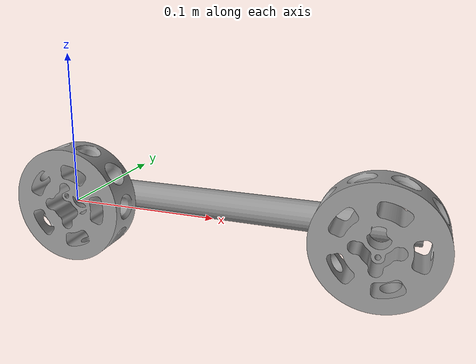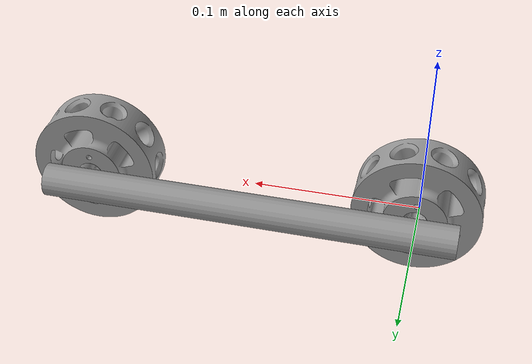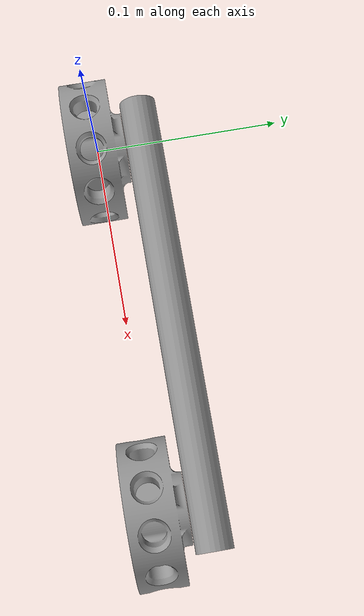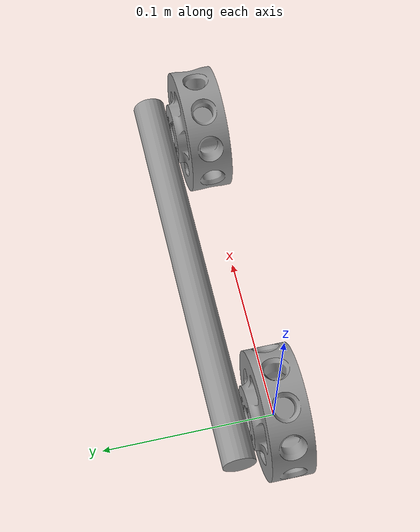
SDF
<?xml version='1.0'?>
<sdf version='1.5'>
  <model name='two_drum'>
    <link name='wheel_0'>
      <pose frame=''>0 0 0 1.57 0 0</pose>
      <gravity>1</gravity>
      <self_collide>1</self_collide>
      <kinematic>0</kinematic>
      <inertial>
        <mass>1</mass>
        <inertia>
          <ixx>1</ixx>
          <ixy>0</ixy>
          <ixz>0</ixz>
          <iyy>1</iyy>
          <iyz>0</iyz>
          <izz>1</izz>
        </inertia>
      </inertial>
      <visual name='visual'>
        <pose frame=''>-0.0375 -0.0375 -0.034 0 -0 0</pose>
        <geometry>
          <mesh>
            <uri>model://track_drum/meshes/drum.STL</uri>
            <scale>0.001 0.001 0.001</scale>
          </mesh>
        </geometry>
        <material>
          <lighting>1</lighting>
          <script>
            <uri>file://media/materials/scripts/gazebo.material</uri>
            <name>Gazebo/Grey</name>
          </script>
          <ambient>0.3 0.3 0.3 1</ambient>
          <diffuse>0.7 0.7 0.7 1</diffuse>
          <specular>0.01 0.01 0.01 1</specular>
          <emissive>0 0 0 1</emissive>
          <shader type='vertex'>
            <normal_map>__default__</normal_map>
          </shader>
        </material>
        <cast_shadows>1</cast_shadows>
        <transparency>0</transparency>
      </visual>
      <collision name='collision'>
        <laser_retro>0</laser_retro>
        <max_contacts>20</max_contacts>
        <pose frame=''>-0.0375 -0.0375 -0.034 0 -0 0</pose>
        <geometry>
          <mesh>
            <uri>model://track_drum/meshes/drum.STL</uri>
            <scale>0.001 0.001 0.001</scale>
          </mesh>
        </geometry>
        <surface>
          <friction>
            <ode>
              <mu>1</mu>
              <mu2>1</mu2>
              <fdir1>0 0 0</fdir1>
              <slip1>0</slip1>
              <slip2>0</slip2>
            </ode>
          </friction>
          <bounce>
            <restitution_coefficient>0</restitution_coefficient>
            <threshold>1</threshold>
          </bounce>
          <contact>
            <collide_without_contact>0</collide_without_contact>
            <collide_without_contact_bitmask>1</collide_without_contact_bitmask>
            <collide_bitmask>1</collide_bitmask>
            <ode>
              <soft_cfm>0.1</soft_cfm>
              <soft_erp>0.2</soft_erp>
              <kp>1e+13</kp>
              <kd>1</kd>
              <max_vel>0.01</max_vel>
              <min_depth>0</min_depth>
            </ode>
            <bullet>
              <split_impulse>1</split_impulse>
              <split_impulse_penetration_threshold>-0.01</split_impulse_penetration_threshold>
              <soft_cfm>0</soft_cfm>
              <soft_erp>0.2</soft_erp>
              <kp>1e+13</kp>
              <kd>1</kd>
            </bullet>
          </contact>
        </surface>
      </collision>
    </link>
    <link name='wheel_1'>
      <pose frame=''>0.2 0 0 1.57 0 0</pose>
      <gravity>1</gravity>
      <self_collide>1</self_collide>
      <kinematic>0</kinematic>
      <inertial>
        <mass>1</mass>
        <inertia>
          <ixx>1</ixx>
          <ixy>0</ixy>
          <ixz>0</ixz>
          <iyy>1</iyy>
          <iyz>0</iyz>
          <izz>1</izz>
        </inertia>
      </inertial>
      <visual name='visual'>
        <pose frame=''>-0.0375 -0.0375 -0.034 0 0 0</pose>
        <geometry>
          <mesh>
            <uri>model://track_drum/meshes/drum.STL</uri>
            <scale>0.001 0.001 0.001</scale>
          </mesh>
        </geometry>
        <material>
          <lighting>1</lighting>
          <script>
            <uri>file://media/materials/scripts/gazebo.material</uri>
            <name>Gazebo/Grey</name>
          </script>
          <ambient>0.3 0.3 0.3 1</ambient>
          <diffuse>0.7 0.7 0.7 1</diffuse>
          <specular>0.01 0.01 0.01 1</specular>
          <emissive>0 0 0 1</emissive>
          <shader type='vertex'>
            <normal_map>__default__</normal_map>
          </shader>
        </material>
        <cast_shadows>1</cast_shadows>
        <transparency>0</transparency>
      </visual>
      <collision name='collision'>
        <laser_retro>0</laser_retro>
        <max_contacts>20</max_contacts>
        <pose frame=''>-0.0375 -0.0375 -0.034 0 0 0</pose>
        <geometry>
          <mesh>
            <uri>model://track_drum/meshes/drum.STL</uri>
            <scale>0.001 0.001 0.001</scale>
          </mesh>
        </geometry>
        <surface>
          <friction>
            <ode>
              <mu>1</mu>
              <mu2>1</mu2>
              <fdir1>0 0 0</fdir1>
              <slip1>0</slip1>
              <slip2>0</slip2>
            </ode>
          </friction>
          <bounce>
            <restitution_coefficient>0</restitution_coefficient>
            <threshold>1</threshold>
          </bounce>
          <contact>
            <collide_without_contact>0</collide_without_contact>
            <collide_without_contact_bitmask>1</collide_without_contact_bitmask>
            <collide_bitmask>1</collide_bitmask>
            <ode>
              <soft_cfm>0.1</soft_cfm>
              <soft_erp>0.2</soft_erp>
              <kp>1e+13</kp>
              <kd>1</kd>
              <max_vel>0.01</max_vel>
              <min_depth>0</min_depth>
            </ode>
            <bullet>
              <split_impulse>1</split_impulse>
              <split_impulse_penetration_threshold>-0.01</split_impulse_penetration_threshold>
              <soft_cfm>0</soft_cfm>
              <soft_erp>0.2</soft_erp>
              <kp>1e+13</kp>
              <kd>1</kd>
            </bullet>
          </contact>
        </surface>
      </collision>
    </link>
    <link name='shaft'>
      <pose frame=''>0.1 0.026 0 0 1.57 0</pose>
      <inertial>
        <mass>0.001</mass>
        <inertia>
          <ixx>0.145833</ixx>
          <ixy>0</ixy>
          <ixz>0</ixz>
          <iyy>0.145833</iyy>
          <iyz>0</iyz>
          <izz>0.125</izz>
        </inertia>
        <pose frame=''>0 0 0 0 -0 0</pose>
      </inertial>
      <gravity>1</gravity>
      <self_collide>0</self_collide>
      <kinematic>0</kinematic>
      <visual name='visual'>
        <pose frame=''>0 0 0 0 -0 0</pose>
        <geometry>
          <cylinder>
            <radius>0.01</radius>
            <length>0.25</length>
          </cylinder>
        </geometry>
        <material>
          <lighting>1</lighting>
          <script>
            <uri>file://media/materials/scripts/gazebo.material</uri>
            <name>Gazebo/Grey</name>
          </script>
          <ambient>0.3 0.3 0.3 1</ambient>
          <diffuse>0.7 0.7 0.7 1</diffuse>
          <specular>0.01 0.01 0.01 1</specular>
          <emissive>0 0 0 1</emissive>
          <shader type='vertex'>
            <normal_map>__default__</normal_map>
          </shader>
        </material>
        <cast_shadows>1</cast_shadows>
        <transparency>0</transparency>
      </visual>
      <collision name='collision'>
        <laser_retro>0</laser_retro>
        <max_contacts>10</max_contacts>
        <pose frame=''>0 0 0 0 -0 0</pose>
        <geometry>
          <cylinder>
            <radius>0.02</radius>
            <length>0.2</length>
          </cylinder>
        </geometry>
        <surface>
          <friction>
            <ode>
              <mu>1</mu>
              <mu2>1</mu2>
              <fdir1>0 0 0</fdir1>
              <slip1>0</slip1>
              <slip2>0</slip2>
            </ode>
            <torsional>
              <coefficient>1</coefficient>
              <patch_radius>0</patch_radius>
              <surface_radius>0</surface_radius>
              <use_patch_radius>1</use_patch_radius>
              <ode>
                <slip>0</slip>
              </ode>
            </torsional>
          </friction>
          <bounce>
            <restitution_coefficient>0</restitution_coefficient>
            <threshold>1e+06</threshold>
          </bounce>
          <contact>
            <collide_without_contact>0</collide_without_contact>
            <collide_without_contact_bitmask>1</collide_without_contact_bitmask>
            <collide_bitmask>1</collide_bitmask>
            <ode>
              <soft_cfm>0</soft_cfm>
              <soft_erp>0.2</soft_erp>
              <kp>1e+13</kp>
              <kd>1</kd>
              <max_vel>0.01</max_vel>
              <min_depth>0</min_depth>
            </ode>
            <bullet>
              <split_impulse>1</split_impulse>
              <split_impulse_penetration_threshold>-0.01</split_impulse_penetration_threshold>
              <soft_cfm>0</soft_cfm>
              <soft_erp>0.2</soft_erp>
              <kp>1e+13</kp>
              <kd>1</kd>
            </bullet>
          </contact>
        </surface>
      </collision>
    </link>

    <joint name="joint_0" type="revolute">
    <pose>0 0 -0.015 0 0 0</pose>
    <child>wheel_0</child>
    <parent>shaft</parent>
    <axis>
        <xyz>0 0 1</xyz>
    </axis>
    </joint>

    <joint name="joint_1" type="revolute">
    <pose>0 0 -0.015 0 0 0</pose>
    <child>wheel_1</child>
    <parent>shaft</parent>
    <axis>
        <xyz>0 0 1</xyz>
    </axis>
    </joint>
    <static>0</static>
    <allow_auto_disable>1</allow_auto_disable>
  </model>
</sdf>
